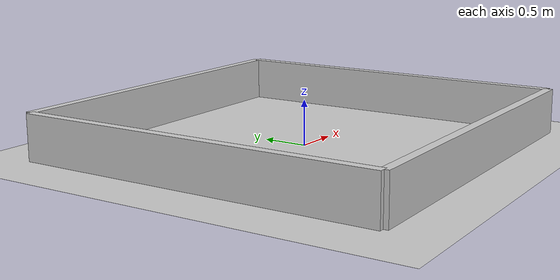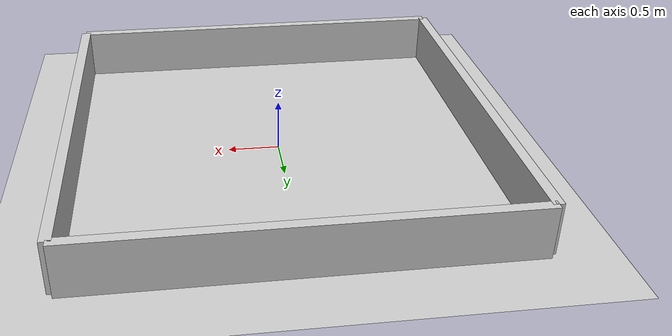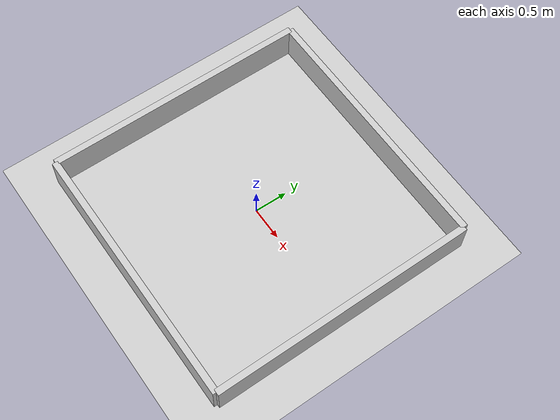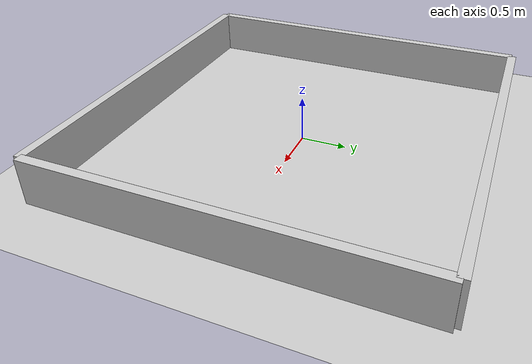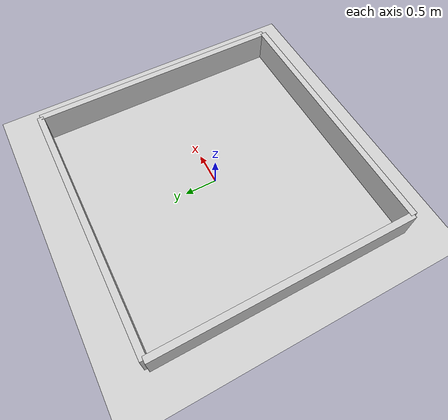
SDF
<sdf version='1.7'>
  <world name='basic_demo_world'>

    <!-- Lighting -->
    <light name='sun' type='directional'>
      <cast_shadows>1</cast_shadows>
      <pose>0 0 10 0 -0 0</pose>
      <diffuse>0.8 0.8 0.8 1</diffuse>
      <specular>0.2 0.2 0.2 1</specular>
      <direction>-0.5 0.1 -0.9</direction>
    </light>

    <!-- Ground Plane -->
    <include>
      <uri>model://ground_plane</uri>
    </include>

    <!-- Physics -->
    <gravity>0 0 -9.8</gravity>
    <physics type='ode'>
      <max_step_size>0.001</max_step_size>
      <real_time_factor>1</real_time_factor>
      <real_time_update_rate>1000</real_time_update_rate>
    </physics>

    <!-- Scene -->
    <scene>
      <ambient>0.4 0.4 0.4 1</ambient>
      <background>0.7 0.7 0.7 1</background>
      <shadows>1</shadows>
    </scene>

    <!-- Simple Room - 4m x 4m -->

    <!-- North Wall -->
    <model name='north_wall'>
      <static>1</static>
      <pose>0 2 0.25 0 0 0</pose>
      <link name='link'>
        <collision name='collision'>
          <geometry>
            <box>
              <size>4 0.1 0.5</size>
            </box>
          </geometry>
        </collision>
        <visual name='visual'>
          <geometry>
            <box>
              <size>4 0.1 0.5</size>
            </box>
          </geometry>
          <material>
            <ambient>0.8 0.8 0.8 1</ambient>
            <diffuse>0.8 0.8 0.8 1</diffuse>
          </material>
        </visual>
      </link>
    </model>

    <!-- South Wall -->
    <model name='south_wall'>
      <static>1</static>
      <pose>0 -2 0.25 0 0 0</pose>
      <link name='link'>
        <collision name='collision'>
          <geometry>
            <box>
              <size>4 0.1 0.5</size>
            </box>
          </geometry>
        </collision>
        <visual name='visual'>
          <geometry>
            <box>
              <size>4 0.1 0.5</size>
            </box>
          </geometry>
          <material>
            <ambient>0.8 0.8 0.8 1</ambient>
            <diffuse>0.8 0.8 0.8 1</diffuse>
          </material>
        </visual>
      </link>
    </model>

    <!-- East Wall -->
    <model name='east_wall'>
      <static>1</static>
      <pose>2 0 0.25 0 0 1.5708</pose>
      <link name='link'>
        <collision name='collision'>
          <geometry>
            <box>
              <size>4 0.1 0.5</size>
            </box>
          </geometry>
        </collision>
        <visual name='visual'>
          <geometry>
            <box>
              <size>4 0.1 0.5</size>
            </box>
          </geometry>
          <material>
            <ambient>0.8 0.8 0.8 1</ambient>
            <diffuse>0.8 0.8 0.8 1</diffuse>
          </material>
        </visual>
      </link>
    </model>

    <!-- West Wall -->
    <model name='west_wall'>
      <static>1</static>
      <pose>-2 0 0.25 0 0 1.5708</pose>
      <link name='link'>
        <collision name='collision'>
          <geometry>
            <box>
              <size>4 0.1 0.5</size>
            </box>
          </geometry>
        </collision>
        <visual name='visual'>
          <geometry>
            <box>
              <size>4 0.1 0.5</size>
            </box>
          </geometry>
          <material>
            <ambient>0.8 0.8 0.8 1</ambient>
            <diffuse>0.8 0.8 0.8 1</diffuse>
          </material>
        </visual>
      </link>
    </model>

  </world>
</sdf>
